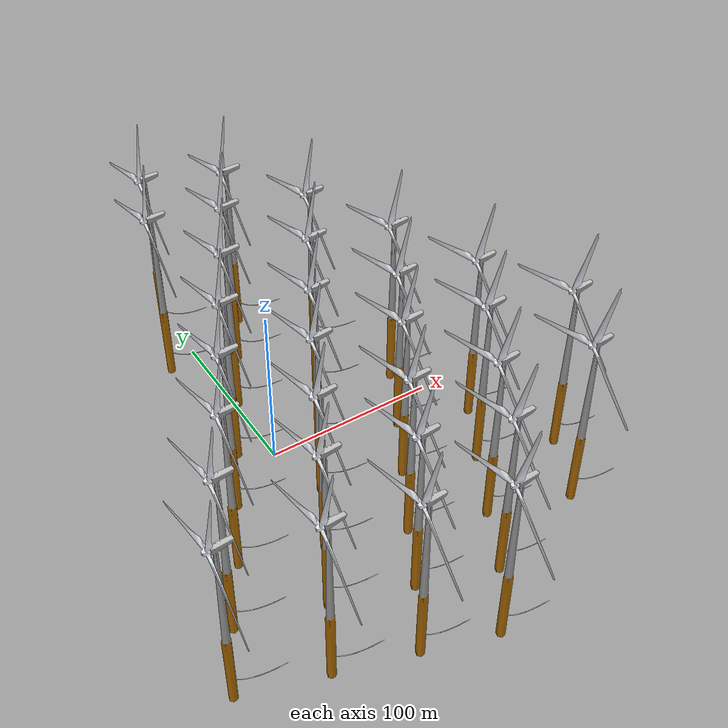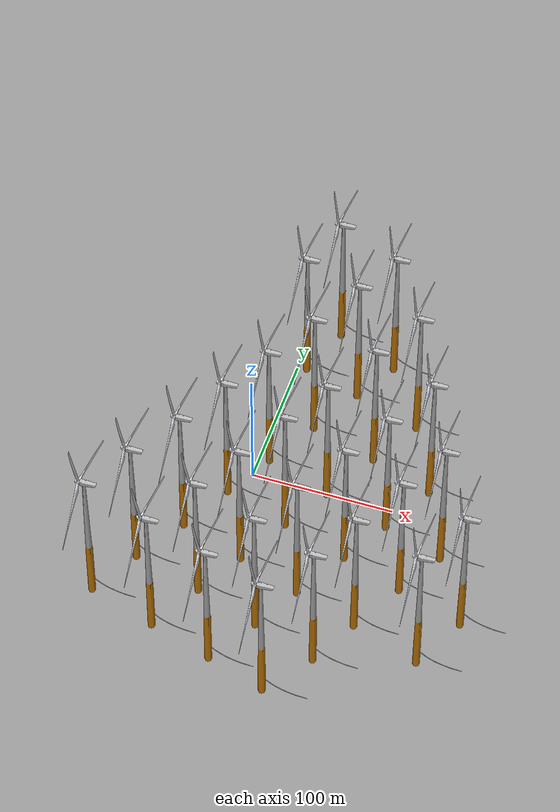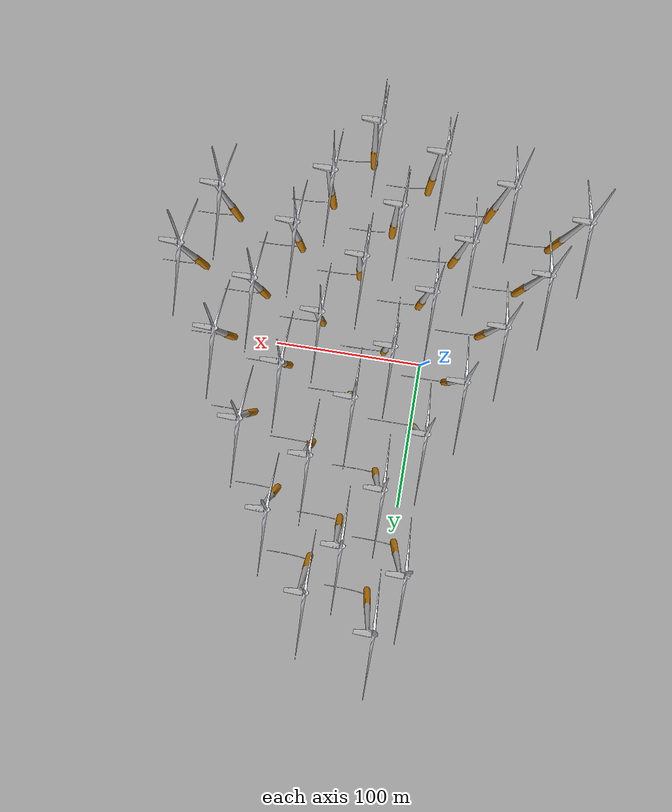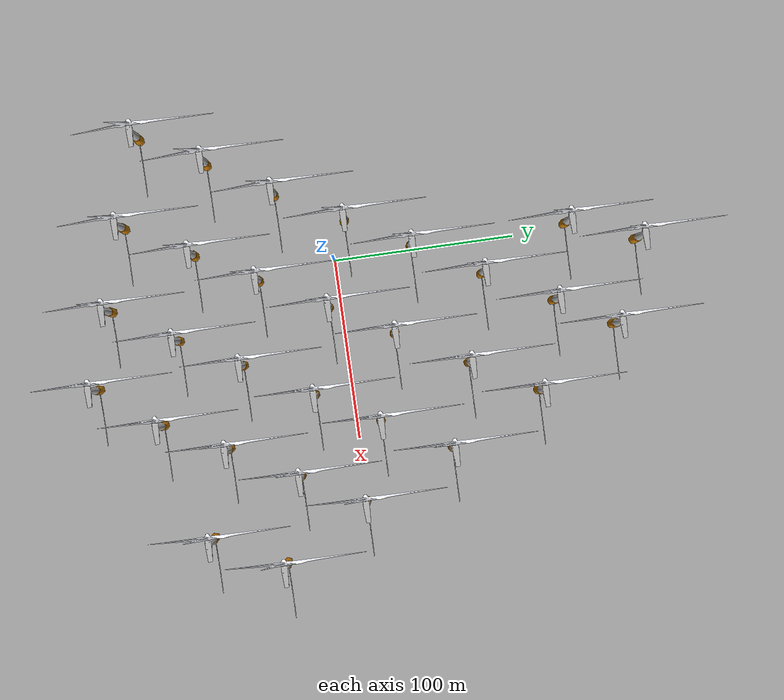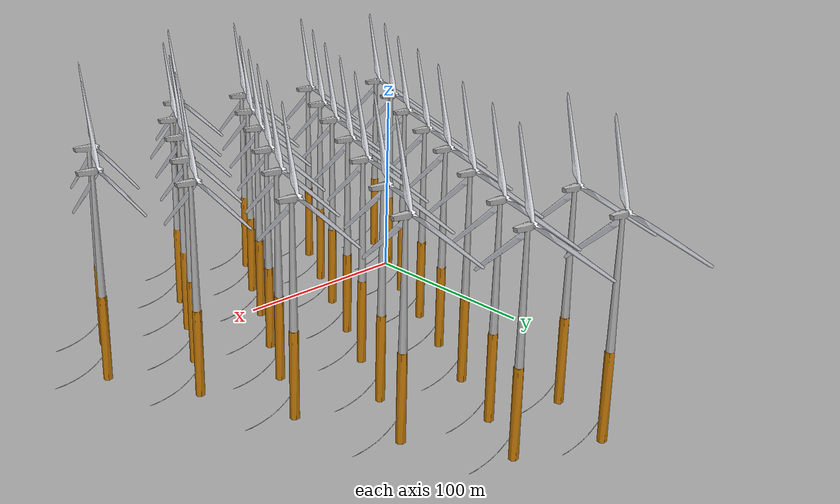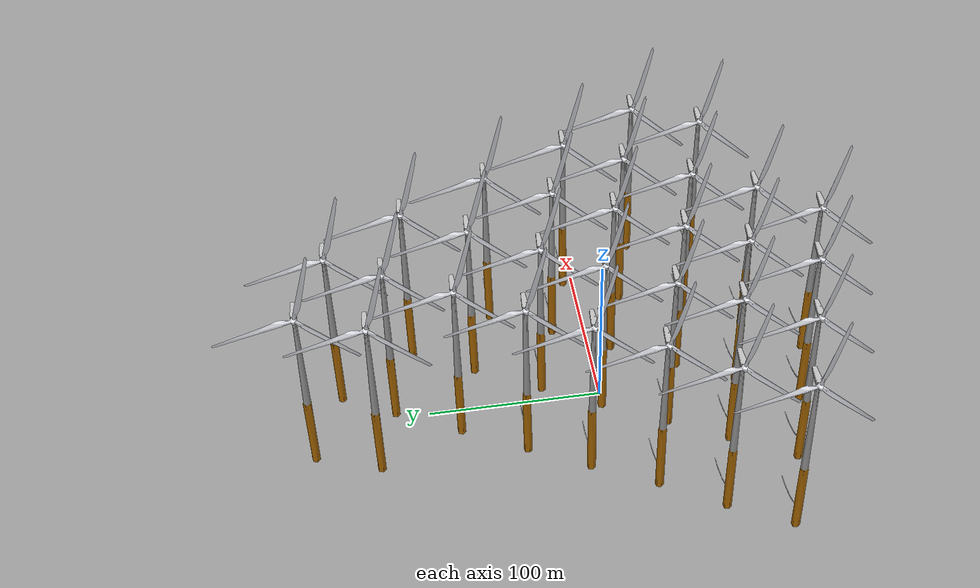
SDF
<sdf version="1.6">
 <world name="turbine_world">
  <include><uri>model://sun</uri></include>
  <physics type="ode">
   <max_step_size>0.005</max_step_size>
   <real_time_factor>2.0</real_time_factor>
   <real_time_update_rate>0</real_time_update_rate>
   <ode><solver><iterations>20</iterations></solver></ode>
  </physics>
  <scene><shadows>0</shadows><grid>false</grid><origin_visual>false</origin_visual></scene>
  <include>
   <name>turbine0</name>
   <uri>model://turbine_rotor</uri>
   <pose>164.49944994499327 -49.24728513807047 0 0 0 0</pose>
  </include>
  <include>
   <name>turbine1</name>
   <uri>model://turbine_rotor</uri>
   <pose>145.16501650164966 -88.18740304064596 0 0 0 0</pose>
  </include>
  <include>
   <name>turbine2</name>
   <uri>model://turbine_rotor</uri>
   <pose>136.0066006600648 -0.6639776605649459 0 0 0 0</pose>
  </include>
  <include>
   <name>turbine3</name>
   <uri>model://turbine_rotor</uri>
   <pose>116.87568756875532 -34.828420726031645 0 0 0 0</pose>
  </include>
  <include>
   <name>turbine4</name>
   <uri>model://turbine_rotor</uri>
   <pose>96.3201320132006 -72.66645982004309 0 0 0 0</pose>
  </include>
  <include>
   <name>turbine5</name>
   <uri>model://turbine_rotor</uri>
   <pose>78.41034103410225 -107.74930189264686 0 0 0 0</pose>
  </include>
  <include>
   <name>turbine6</name>
   <uri>model://turbine_rotor</uri>
   <pose>53.58085808580707 -141.27086565311802 0 0 0 0</pose>
  </include>
  <include>
   <name>turbine7</name>
   <uri>model://turbine_rotor</uri>
   <pose>112.60176017601644 51.40924604405832 0 0 0 0</pose>
  </include>
  <include>
   <name>turbine8</name>
   <uri>model://turbine_rotor</uri>
   <pose>92.45324532453157 13.479367049332332 0 0 0 0</pose>
  </include>
  <include>
   <name>turbine9</name>
   <uri>model://turbine_rotor</uri>
   <pose>72.9152915291538 -20.868755817561357 0 0 0 0</pose>
  </include>
  <include>
   <name>turbine10</name>
   <uri>model://turbine_rotor</uri>
   <pose>51.138613861384854 -58.70679491157351 0 0 0 0</pose>
  </include>
  <include>
   <name>turbine11</name>
   <uri>model://turbine_rotor</uri>
   <pose>32.618261826182504 -92.68755817561322 0 0 0 0</pose>
  </include>
  <include>
   <name>turbine12</name>
   <uri>model://turbine_rotor</uri>
   <pose>11.248624862484965 -128.22959975178412 0 0 0 0</pose>
  </include>
  <include>
   <name>turbine13</name>
   <uri>model://turbine_rotor</uri>
   <pose>87.36523652365142 104.03350915296328 0 0 0 0</pose>
  </include>
  <include>
   <name>turbine14</name>
   <uri>model://turbine_rotor</uri>
   <pose>66.8096809680967 67.02202916537364 0 0 0 0</pose>
  </include>
  <include>
   <name>turbine15</name>
   <uri>model://turbine_rotor</uri>
   <pose>44.8294829482936 27.806391560657303 0 0 0 0</pose>
  </include>
  <include>
   <name>turbine16</name>
   <uri>model://turbine_rotor</uri>
   <pose>25.495049504949993 -6.5417313062363895 0 0 0 0</pose>
  </include>
  <include>
   <name>turbine17</name>
   <uri>model://turbine_rotor</uri>
   <pose>5.346534653465122 -43.55321129382532 0 0 0 0</pose>
  </include>
  <include>
   <name>turbine18</name>
   <uri>model://turbine_rotor</uri>
   <pose>-13.580858085808643 -77.71765435929342 0 0 0 0</pose>
  </include>
  <include>
   <name>turbine19</name>
   <uri>model://turbine_rotor</uri>
   <pose>-34.136413641364925 -114.72913434688238 0 0 0 0</pose>
  </include>
  <include>
   <name>turbine20</name>
   <uri>model://turbine_rotor</uri>
   <pose>56.226622662266564 150.5963388147684 0 0 0 0</pose>
  </include>
  <include>
   <name>turbine21</name>
   <uri>model://turbine_rotor</uri>
   <pose>38.52035203520235 119.00341296928306 0 0 0 0</pose>
  </include>
  <include>
   <name>turbine22</name>
   <uri>model://turbine_rotor</uri>
   <pose>18.16831683168177 80.98169407384393 0 0 0 0</pose>
  </include>
  <include>
   <name>turbine23</name>
   <uri>model://turbine_rotor</uri>
   <pose>-2.5907590759070906 43.51101458268647 0 0 0 0</pose>
  </include>
  <include>
   <name>turbine24</name>
   <uri>model://turbine_rotor</uri>
   <pose>-21.721672167216553 8.428172510083405 0 0 0 0</pose>
  </include>
  <include>
   <name>turbine25</name>
   <uri>model://turbine_rotor</uri>
   <pose>-41.25962596259588 -28.58330747750552 0 0 0 0</pose>
  </include>
  <include>
   <name>turbine26</name>
   <uri>model://turbine_rotor</uri>
   <pose>-63.44334433443311 -64.03350915296328 0 0 0 0</pose>
  </include>
  <include>
   <name>turbine27</name>
   <uri>model://turbine_rotor</uri>
   <pose>-82.77777777777672 -99.66739062984801 0 0 0 0</pose>
  </include>
  <include>
   <name>turbine28</name>
   <uri>model://turbine_rotor</uri>
   <pose>10.63806380637941 169.23983865963362 0 0 0 0</pose>
  </include>
  <include>
   <name>turbine29</name>
   <uri>model://turbine_rotor</uri>
   <pose>-3.40484048404835 131.12627986348062 0 0 0 0</pose>
  </include>
  <plugin name="underwater_current_plugin" filename="libuuv_underwater_current_ros_plugin.so">
   <namespace>hydrodynamics</namespace>
   <constant_current>
    <topic>current_velocity</topic>
    <velocity><mean>0</mean><min>0</min><max>0</max><mu>0.0</mu><noiseAmp>0.0</noiseAmp></velocity>
    <horizontal_angle>
     <mean>0</mean>
     <min>-3.141592653589793238</min>
     <max>3.141592653589793238</max>
     <mu>0.0</mu>
     <noiseAmp>0.0</noiseAmp>
    </horizontal_angle>
    <vertical_angle>
     <mean>0</mean>
     <min>-3.141592653589793238</min>
     <max>3.141592653589793238</max>
     <mu>0.0</mu>
     <noiseAmp>0.0</noiseAmp>
    </vertical_angle>
   </constant_current>
  </plugin>
  <plugin name="sc_interface" filename="libuuv_sc_ros_interface_plugin.so"/>
 </world>
</sdf>

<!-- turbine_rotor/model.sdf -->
<sdf version="1.6">

  <model name='turbine'>

    <link name="rotor">
      <pose>0 0 81.7 0 0 0</pose>

      <inertial>
        <mass>15</mass>
        <inertia>
          <ixx>1.0051</ixx>
          <iyy>1.0051</iyy>
          <izz>1.0090</izz>
          <ixy>0</ixy>
          <ixy>0</ixy>
          <ixz>0</ixz>
          <iyz>0</iyz>
        </inertia>
     </inertial>

      <visual name="visual">
          <geometry>
            <mesh>
              <uri>model://turbine_rotor/meshes/rotor_low.dae</uri>
            </mesh>
          </geometry>
      </visual>
    </link>

    <model name='turbine_base'>

    <static>1</static>
    <pose frame=''>0 0 0 0 0 0</pose>

    <link name='mast'>

      <inertial>
        <mass>100000</mass>
        <inertia>
          <ixx>100000</ixx>
          <iyy>100000</iyy>
          <izz>100000</izz>
          <ixy>0</ixy>
          <ixy>0</ixy>
          <ixz>0</ixz>
          <iyz>0</iyz>
        </inertia>
      </inertial>

      <collision name='collision'>
        <pose>0 0 0 0 0 0</pose>
        <geometry>
          <mesh><uri>model://turbine_rotor/meshes/monopile2_low.dae</uri></mesh>
        </geometry>
        <max_contacts>10</max_contacts>
      </collision>

      <visual name='visual'>
        <pose>0 0 0 0 0 0</pose>
        <geometry>
          <mesh><uri>model://turbine_rotor/meshes/monopile2_low.dae</uri></mesh>
        </geometry>
      </visual>

      <self_collide>0</self_collide>
      <enable_wind>0</enable_wind>
      <kinematic>0</kinematic>
    </link>
    </model>

    <joint type="revolute" name="rotor_hinge">
      <pose>0 0 0 0 0 0</pose>
      <child>rotor</child>
      <parent>turbine_base::mast</parent>
      <axis>
        <xyz>1 0 0</xyz>
      </axis>
    </joint>

  -->

  </model>
</sdf>
